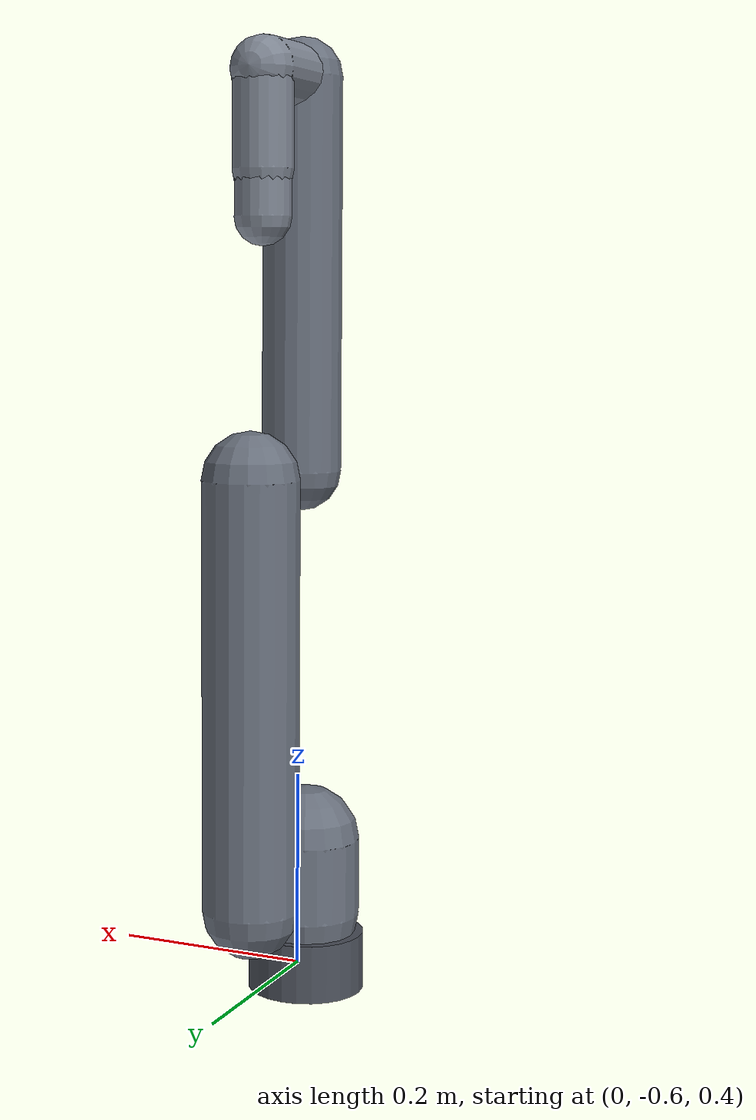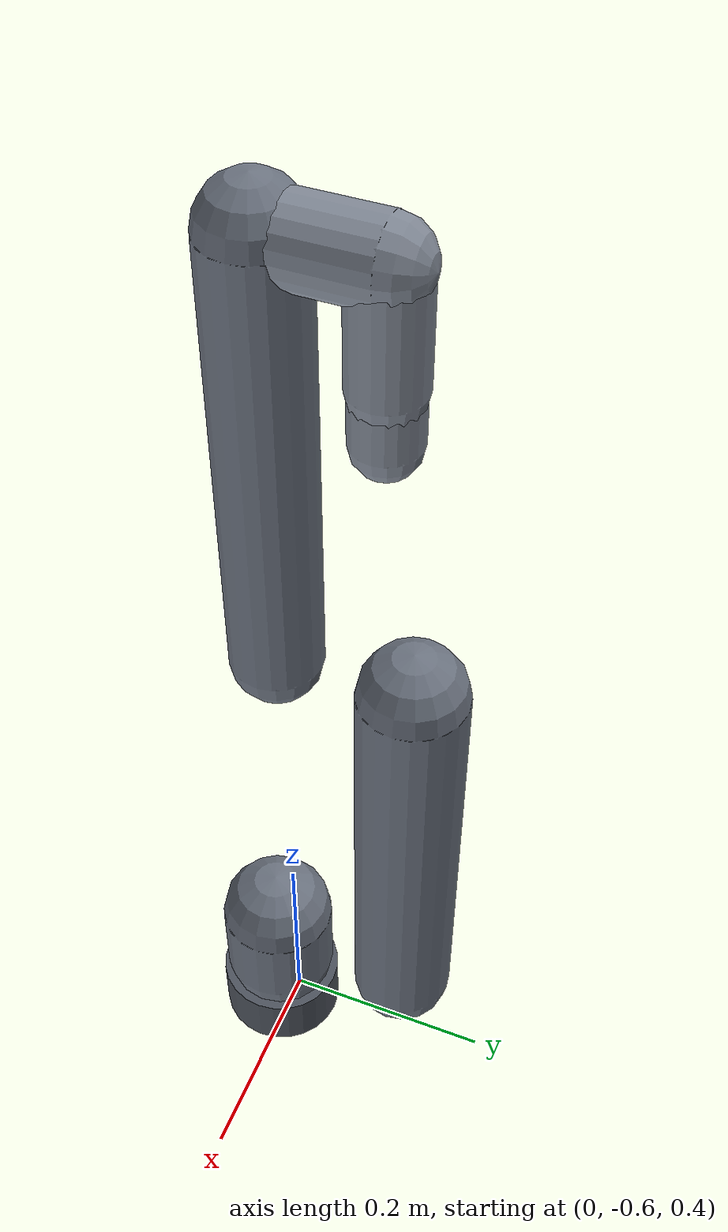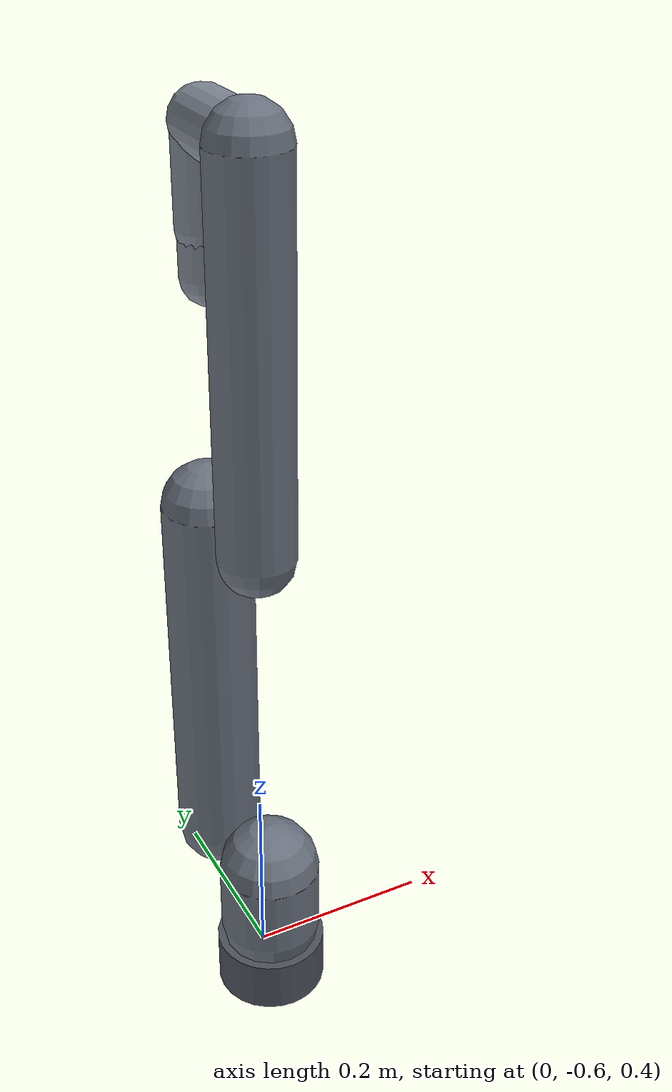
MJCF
<mujoco model="arm_chain">
  <compiler angle="radian"/>
  <worldbody>
    <body name="base" pos="0 -0.62 0.40">
      <geom name="base" type="cylinder" size="0.06 0.03" rgba="0.30 0.32 0.36 1" mass="4.0"/>
      <body name="shoulder" pos="0 0 0.089">
        <joint name="j1" type="hinge" axis="0 0 1" range="-3.14 3.14" damping="20" armature="0.1"/>
        <geom name="l1" type="capsule" fromto="0 0 -0.04 0 0 0.04" size="0.055"
              rgba="0.42 0.45 0.50 1" mass="3.7"/>
        <body name="upper" pos="0 0.136 0">
          <joint name="j2" type="hinge" axis="1 0 0" range="-2.9 0.35" damping="20" armature="0.1"/>
          <geom name="l2" type="capsule" fromto="0 0 0 0 0 0.425" size="0.048"
                rgba="0.42 0.45 0.50 1" mass="8.4"/>
          <body name="fore" pos="0 -0.120 0.425">
            <joint name="j3" type="hinge" axis="1 0 0" range="-2.9 2.9" damping="15" armature="0.08"/>
            <geom name="l3" type="capsule" fromto="0 0 0 0 0 0.392" size="0.040"
                  rgba="0.42 0.45 0.50 1" mass="2.3"/>
            <body name="wrist1" pos="0 0 0.392">
              <joint name="j4" type="hinge" axis="1 0 0" range="-3.14 3.14" damping="6" armature="0.02"/>
              <geom name="l4" type="capsule" fromto="0 0 0 0 0.093 0" size="0.032"
                    rgba="0.50 0.53 0.58 1" mass="1.2"/>
              <body name="wrist2" pos="0 0.093 0">
                <joint name="j5" type="hinge" axis="0 0 1" range="-3.14 3.14" damping="5" armature="0.02"/>
                <geom name="l5" type="capsule" fromto="0 0 0 0 0 -0.095" size="0.030"
                      rgba="0.50 0.53 0.58 1" mass="1.2"/>
                <body name="wrist3" pos="0 0 -0.095">
                  <joint name="j6" type="hinge" axis="1 0 0" range="-3.14 3.14" damping="4" armature="0.015"/>
                  <geom name="l6" type="capsule" fromto="0 0 0 0 0 -0.045" size="0.028"
                        rgba="0.50 0.53 0.58 1" mass="0.35"/>
                  <site name="flange" pos="0 0 -0.045" size="0.004" rgba="0 1 1 0.0"/>
                </body>
              </body>
            </body>
          </body>
        </body>
      </body>
    </body>
  </worldbody>
</mujoco>
